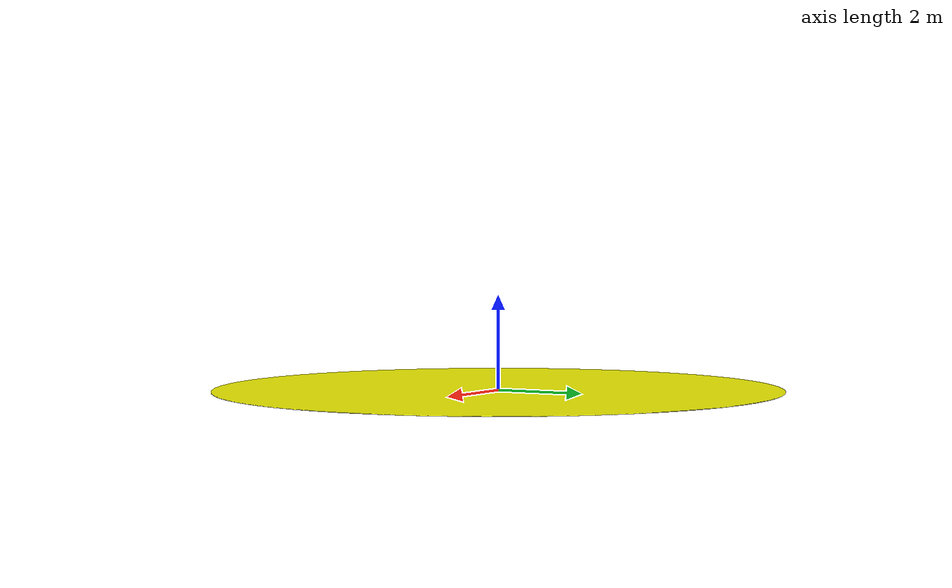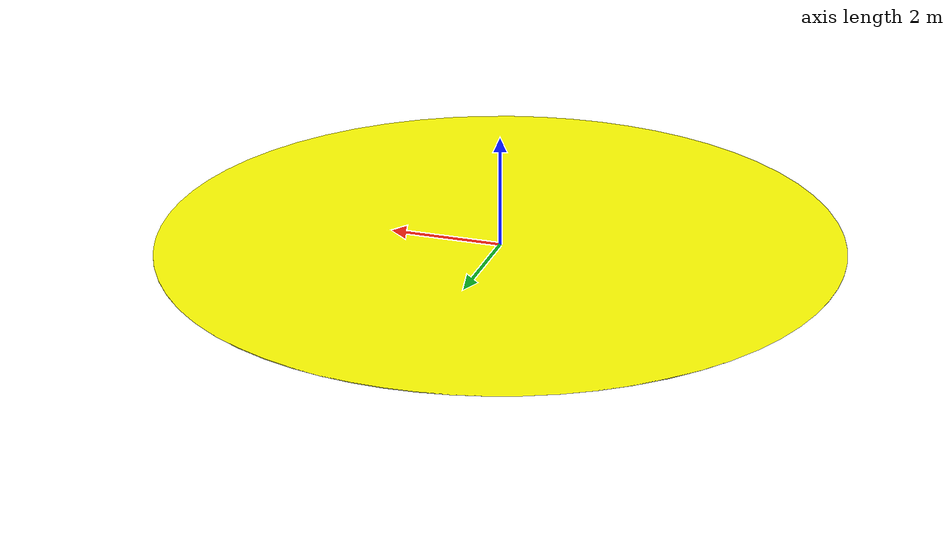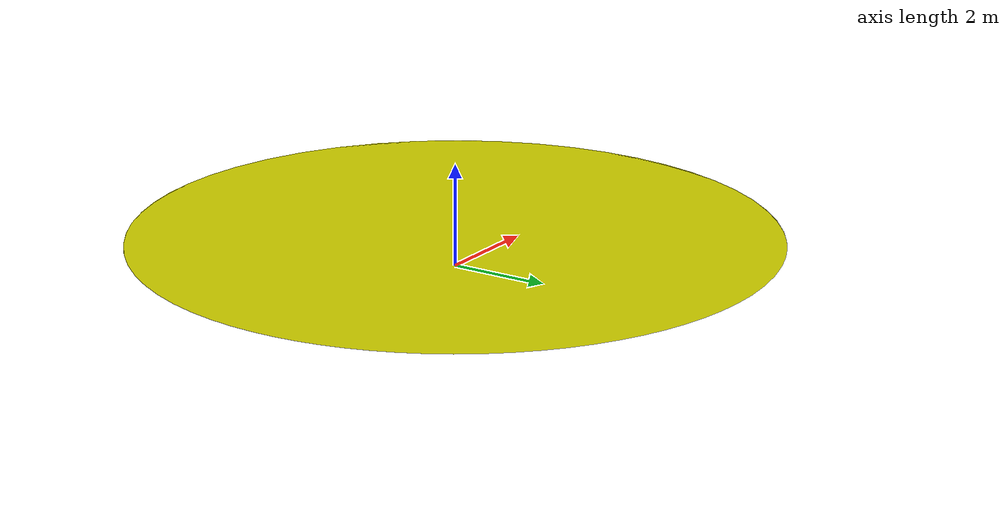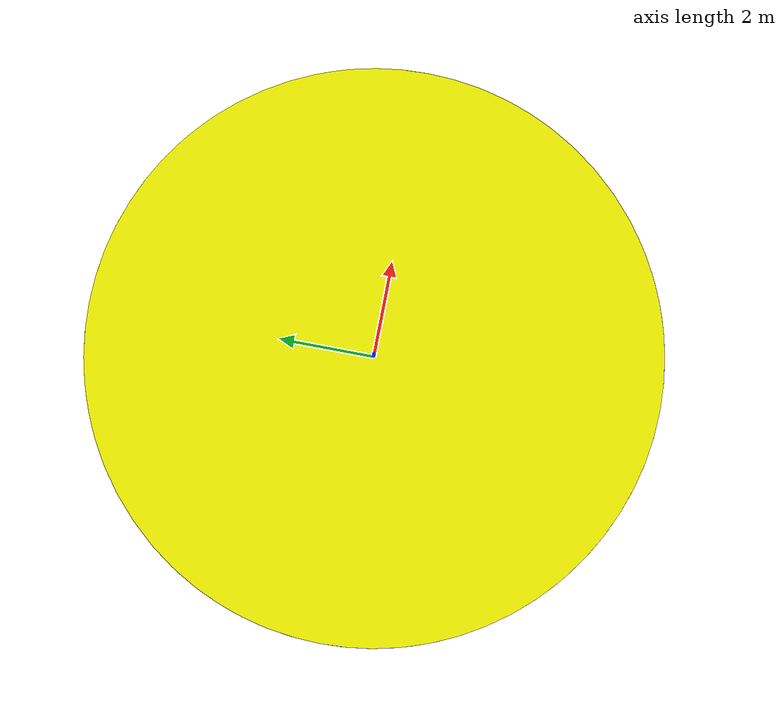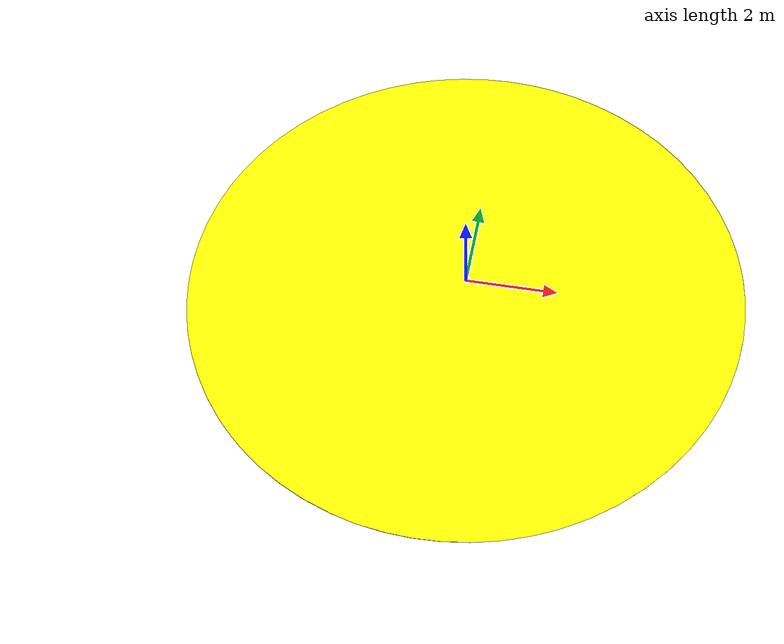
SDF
<?xml version='1.0'?>
<sdf version='1.7'>
  <model name='SARC_Yellow'>
    <link name='link'>
      <inertial>
        <mass>1</mass>
        <inertia>
          <ixx>0.166667</ixx>
          <ixy>0</ixy>
          <ixz>0</ixz>
          <iyy>0.166667</iyy>
          <iyz>0</iyz>
          <izz>0.166667</izz>
        </inertia>
        <pose>0 0 0 0 -0 0</pose>
      </inertial>
      <self_collide>0</self_collide>
      <enable_wind>0</enable_wind>
      <kinematic>0</kinematic>
      <pose>0 0 0 0 -0 0</pose>
      <gravity>1</gravity>
      <visual name='visual'>
        <geometry>
          <mesh>
            <uri>model://SARC_Yellow/yellow_area.dae</uri>
            <scale>1.0 1.0 1.0</scale>
          </mesh>
        </geometry>
        <pose>0 0 0 0 -0 0</pose>
        <transparency>0</transparency>
        <cast_shadows>1</cast_shadows>
      </visual>
    </link>
    <static>1</static>
    <allow_auto_disable>1</allow_auto_disable>
  </model>
</sdf>
